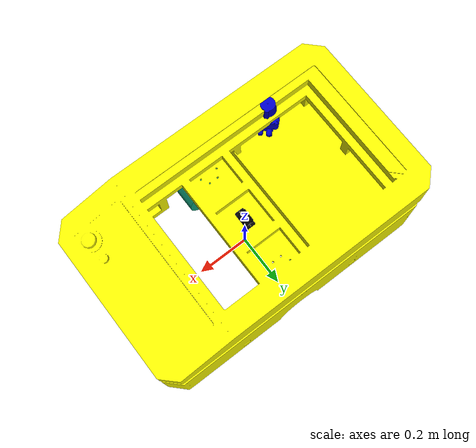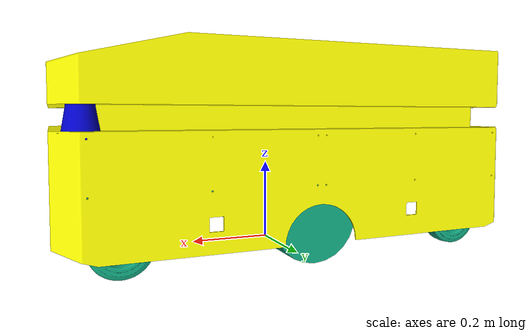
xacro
<?xml version="1.0"?>
<robot name="robot" xmlns:xacro="http://www.ros.org/wiki/xacro">

    <!-- ==== PROPERTIES ==== -->
    <xacro:property name="ground_distance" value="0.05" />

    <!-- ==== ROBOT BASE ==== -->
    <xacro:include filename="$(find robot_description)/urdf/v2/base.xacro" />

    <!-- ==== MACROS ==== -->
    <xacro:include filename="$(find robot_description)/urdf/v2/wheel.xacro" />
    <xacro:include filename="$(find robot_description)/urdf/v2/laser.xacro" />

    <!-- ==== FRONT LEFT CASTER WHEEL ==== -->
    <xacro:caster_wheel name="front_left" x="0.410295" y="0.24" z="-${ground_distance}" />

    <!-- ==== FRONT RIGHT CASTER WHEEL ==== -->
    <xacro:caster_wheel name="front_right" x="0.410295" y="-0.24" z="-${ground_distance}" />

    <!-- ==== BACK LEFT CASTER WHEEL ==== -->
    <xacro:caster_wheel name="back_left" x="-0.410295" y="0.24" z="-${ground_distance}" />

    <!-- ==== BACK RIGHT CASTER WHEEL ==== -->
    <xacro:caster_wheel name="back_right" x="-0.410295" y="-0.24" z="-${ground_distance}" />

    <!-- ==== LEFT WHEEL ==== -->
    <xacro:wheel name="left" radius="0.1" length="0.1" x="0.0" y="0.24" z="${ground_distance}" />

    <!-- ==== RIGHT WHEEL ==== -->
    <xacro:wheel name="right" radius="0.1" length="0.1" x="0.0" y="-0.24" z="${ground_distance}" />

    <!-- ==== FRONT LASER ==== -->
    <xacro:laser name="front" x="0.48" y="0.26" z="${0.266}" yaw="0.785398" />

    <!-- ==== BACK LASER ==== -->
    <xacro:laser name="back" x="-0.30" y="-0.26" z="${0.266}" yaw="-2.35636902" />

    <!-- ==== IMU ==== -->
    <xacro:include filename="$(find robot_description)/urdf/v2/imu.xacro" />

</robot>

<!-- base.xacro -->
<robot name="robot" xmlns:xacro="http://www.ros.org/wiki/xacro">

    <xacro:include filename="$(find robot_description)/urdf/v2/caster_wheel.xacro" />

    <link name="base_footprint"/>

    <!-- ==== BASE LINK ==== -->
    <link name="base_link">
        <pose>0 0 0 0 0 0</pose>
        <visual>
            <geometry>
                <mesh filename="package://robot_description/meshes/chassis_v3.stl" scale="1 1 1" />
            </geometry>
            <material name="yellow">
                <color rgba="1.0 1.0 0.0 1.0"/>
            </material>
            <origin xyz="0 0 0" rpy="0 0 0"/>
        </visual>
        <collision>
            <geometry>
                <mesh filename="package://robot_description/meshes/chassis_v3.stl" scale="1 1 1" />
            </geometry>
            <origin xyz="0 0 0" rpy="0 0 0"/>
        </collision>
        <inertial>
            <mass value="2"/>
            <inertia ixx="0.0395416666667" ixy="0" ixz="0" iyy="0.106208333333" iyz="0" izz="0.106208333333"/>
        </inertial>

    </link>

    <joint name="base_joint" type="fixed">
        <parent link="base_footprint"/>
        <child link="base_link"/>
        <origin xyz="0.0 0.0 0.05" rpy="0.0 0.0 0.0"/>
        <axis xyz="0.0 0.0 0.0" />
    </joint>

</robot>

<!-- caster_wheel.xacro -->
<robot name="robot" xmlns:xacro="http://www.ros.org/wiki/xacro">

    <xacro:macro name="caster_wheel" params="name x y z">

        <link name="${name}_caster_link">
            <visual>
                <origin xyz="0 0.001 0" rpy="0 0 0"/>
                <geometry>
                    <mesh filename="package://robot_description/meshes/caster_wheel_v2.stl" scale="1 1 1" />
                </geometry>
                <origin xyz="0 0 0" rpy="0 0 0"/>
                <material name="green">
                    <color rgba="0.062 0.643 0.49 1.0"/>
                </material>
            </visual>
            <collision>
                <origin xyz="0 0.001 0" rpy="0 0 0"/>
                <geometry>
                    <mesh filename="package://robot_description/meshes/caster_wheel_v2.stl" scale="1 1 1" />
                </geometry>
            </collision>
            <inertial>
                <origin xyz="0 0 0" />
                <mass value="0.005" />
                <inertia ixx="0.001" ixy="0.0" ixz="0.0"
                        iyy="0.001" iyz="0.0"
                        izz="0.001" />
            </inertial>
        </link>

        <joint name="${name}_joint" type="fixed">
            <parent link="base_link"/>
            <child link="${name}_caster_link"/>
            <origin xyz="${x} ${y} ${z}" rpy="0 0 0"/>
        </joint>

    </xacro:macro>
</robot>

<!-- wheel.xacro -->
<robot name="robot" xmlns:xacro="http://www.ros.org/wiki/xacro">

    <xacro:macro name="wheel" params="name radius length x y z">

        <link name="wheel_${name}_link">
            <visual>
                <geometry>
                    <cylinder radius="${radius}" length="${length}"/>
                </geometry>
                <origin xyz="0 0 0" rpy="1.57 0 0"/>
                <material name="green">
                    <color rgba="0.062 0.643 0.49 1.0"/>
                </material>
            </visual>
            <collision>
                <geometry>
                    <cylinder radius="${radius}" length="${length}"/>
                </geometry>
                <origin xyz="0 0 0" rpy="1.57 0 0"/>
            </collision>
            <inertial>
                <mass value="1"/>
                <inertia ixx="0.01" ixy="0.0" ixz="0.0" iyy="0.01" iyz="0.0" izz="0.01" />
            </inertial>
        </link>

        <joint name="wheel_${name}_joint" type="continuous">
            <parent link="base_link"/>
            <child link="wheel_${name}_link"/>
            <origin xyz="${x} ${y} ${z}" />
            <axis rpy="0 0 0" xyz="0 1 0"/>
            <limit effort="10000" velocity="1000"/>
            <joint_properties damping="1.0" friction="1.0"/>
        </joint>

    </xacro:macro>
</robot>

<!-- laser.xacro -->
<robot name="robot" xmlns:xacro="http://www.ros.org/wiki/xacro">

    <xacro:macro name="laser" params="name x y z yaw">

        <link name="${name}_laser_link">
            <visual>
                <geometry>
                    <mesh filename="package://robot_description/meshes/laser_v2.stl" scale="0.75 0.75 0.75" />
                </geometry>
                <origin xyz="0 0 0" rpy="0 0 0"/>
                <material name="blue">
                    <color rgba="0 0 0.8 1"/>
                </material>
            </visual>
            <collision>
                <geometry>
                    <mesh filename="package://robot_description/meshes/laser_v2.stl" scale="0.75 0.75 0.75" />
                </geometry>
                <origin xyz="0 0 0" rpy="0 0 0"/>
            </collision>
            <inertial>
                <mass value="1"/>
                <inertia ixx="0.01" ixy="0.0" ixz="0.0" iyy="0.01" iyz="0.0" izz="0.01" />
            </inertial>
        </link>
        <joint name="base_${name}_laser_joint" type="fixed">
            <parent link="base_link"/>
            <child link="${name}_laser_link"/>
            <origin xyz="${x} ${y} ${z}" rpy="0 0 ${yaw}"/>
        </joint>

    </xacro:macro>
</robot>

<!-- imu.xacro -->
<robot name="robot" xmlns:xacro="http://www.ros.org/wiki/xacro">

    <!-- ==== IMU ==== -->
    <link name="imu_link">
        <visual>
            <geometry>
                <mesh filename="package://robot_description/meshes/imu.stl" scale="10 10 10"  />
            </geometry>
            <origin xyz="0 0 0" rpy="0 0 0"/>
            <material name="black">
                <color rgba="0.0 0.0 0.0 1.0"/>
            </material>
        </visual>
        <collision>
            <geometry>
                <mesh filename="package://robot_description/meshes/imu.stl" scale="10 10 10"   />
            </geometry>
            <origin xyz="0 0 0" rpy="0 0 0"/>
        </collision>
        <inertial>
            <mass value="0.02"/>
            <inertia ixx="0.01" ixy="0.0" ixz="0.0" iyy="0.01" iyz="0.0" izz="0.01" />
        </inertial>
    </link>
    <joint name="imu_joint" type="fixed">
        <parent link="base_link"/>
        <child link="imu_link"/>
        <origin xyz="0 0 0.242" />
    </joint>

</robot>
